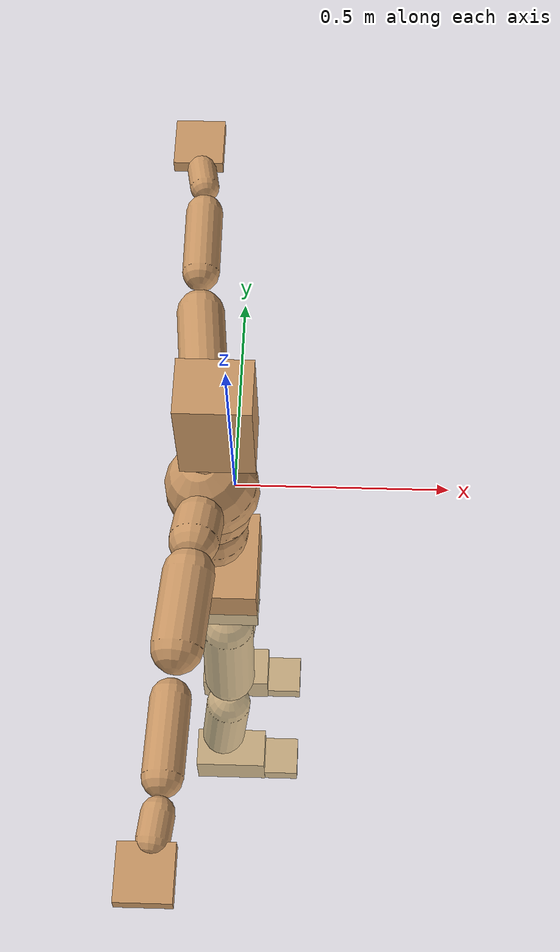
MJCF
<mujoco model="humanoid">
  <compiler coordinate="local" />
  <default>
    <joint damping="0.0" armature="0.01" stiffness="0.0" limited="true" />
    <geom conaffinity="1" condim="3" contype="7" margin="0.001" rgba="0.8 0.6 .4 1" />
  </default>
  <asset>
    <texture type="skybox" builtin="gradient" rgb1=".4 .5 .6" rgb2="0 0 0" width="100" height="100" />
    <texture builtin="flat" height="1278" mark="cross" markrgb="1 1 1" name="texgeom" random="0.01" rgb1="0.8 0.6 0.4" rgb2="0.8 0.6 0.4" type="cube" width="127" />
    <texture builtin="checker" height="100" name="texplane" rgb1="0 0 0" rgb2="0.8 0.8 0.8" type="2d" width="100" />
    <material name="MatPlane" reflectance="0.5" shininess="1" specular="1" texrepeat="60 60" texture="texplane" />
    <material name="geom" texture="texgeom" texuniform="true" />
  </asset>
  <worldbody>
    <light cutoff="100" diffuse="1 1 1" dir="-0 0 -1.3" directional="true" exponent="1" pos="0 0 1.3" specular=".1 .1 .1" />
    <geom conaffinity="1" condim="3" name="floor" pos="0 0 0" rgba="0.8 0.9 0.8 1" size="100 100 .2" type="plane" material="MatPlane" />
    <body name="Pelvis" pos="-0.0024 -0.2255 0.0248">
      <freejoint name="Pelvis" />
      <geom type="box" pos="-0.0110 -0.0002 -0.0104" size="0.0795 0.1063 0.0732" quat="1.0000 0.0000 0.0000 0.0000" density="1000" />
      <body name="L_Hip" pos="-0.0076 0.0679 -0.0917">
        <joint name="L_Hip_x" type="hinge" pos="0 0 0" axis="1 0 0" stiffness="800" damping="80" armature="0.02" range="-180.0000 180.0000" />
        <joint name="L_Hip_y" type="hinge" pos="0 0 0" axis="0 1 0" stiffness="800" damping="80" armature="0.02" range="-180.0000 180.0000" />
        <joint name="L_Hip_z" type="hinge" pos="0 0 0" axis="0 0 1" stiffness="800" damping="80" armature="0.02" range="-180.0000 180.0000" />
        <geom type="capsule" contype="1" conaffinity="1" density="2040.816327" fromto="-0.0002 0.0080 -0.0794 -0.0008 0.0321 -0.3178" size="0.0618" />
        <body name="L_Knee" pos="-0.001 0.0401 -0.3972">
          <joint name="L_Knee_x" type="hinge" pos="0 0 0" axis="1 0 0" stiffness="800" damping="80" armature="0.02" range="-180.0000 180.0000" />
          <joint name="L_Knee_y" type="hinge" pos="0 0 0" axis="0 1 0" stiffness="800" damping="80" armature="0.02" range="-180.0000 180.0000" />
          <joint name="L_Knee_z" type="hinge" pos="0 0 0" axis="0 0 1" stiffness="800" damping="80" armature="0.02" range="-180.0000 180.0000" />
          <geom type="capsule" contype="1" conaffinity="1" density="1234.567901" fromto="-0.0088 -0.0029 -0.0841 -0.0350 -0.0117 -0.3364" size="0.0548" />
          <body name="L_Ankle" pos="-0.0438 -0.0146 -0.4204">
            <joint name="L_Ankle_x" type="hinge" pos="0 0 0" axis="1 0 0" stiffness="800" damping="80" armature="0.02" range="-180.0000 180.0000" />
            <joint name="L_Ankle_y" type="hinge" pos="0 0 0" axis="0 1 0" stiffness="800" damping="80" armature="0.02" range="-180.0000 180.0000" />
            <joint name="L_Ankle_z" type="hinge" pos="0 0 0" axis="0 0 1" stiffness="800" damping="80" armature="0.02" range="-180.0000 180.0000" />
            <geom type="box" pos="0.0253 0.0260 -0.0248" size="0.0875 0.0507 0.0478" quat="1.0000 0.0000 0.0000 0.0000" density="1000" />
            <body name="L_Toe" pos="0.1235 0.0299 -0.0582">
              <joint name="L_Toe_x" type="hinge" pos="0 0 0" axis="1 0 0" stiffness="500" damping="50" armature="0.02" range="-180.0000 180.0000" />
              <joint name="L_Toe_y" type="hinge" pos="0 0 0" axis="0 1 0" stiffness="500" damping="50" armature="0.02" range="-180.0000 180.0000" />
              <joint name="L_Toe_z" type="hinge" pos="0 0 0" axis="0 0 1" stiffness="500" damping="50" armature="0.02" range="-180.0000 180.0000" />
              <geom type="box" pos="0.0255 -0.0039 0.0063" size="0.0506 0.049 0.0208" quat="1.0000 0.0000 0.0000 0.0000" density="1000" />
            </body>
          </body>
        </body>
      </body>
      <body name="R_Hip" pos="-0.0061 -0.0662 -0.0905">
        <joint name="R_Hip_x" type="hinge" pos="0 0 0" axis="1 0 0" stiffness="800" damping="80" armature="0.02" range="-180.0000 180.0000" />
        <joint name="R_Hip_y" type="hinge" pos="0 0 0" axis="0 1 0" stiffness="800" damping="80" armature="0.02" range="-180.0000 180.0000" />
        <joint name="R_Hip_z" type="hinge" pos="0 0 0" axis="0 0 1" stiffness="800" damping="80" armature="0.02" range="-180.0000 180.0000" />
        <geom type="capsule" contype="1" conaffinity="1" density="2040.816327" fromto="-0.0014 -0.0087 -0.0809 -0.0054 -0.0347 -0.3234" size="0.0606" />
        <body name="R_Knee" pos="-0.0068 -0.0433 -0.4043">
          <joint name="R_Knee_x" type="hinge" pos="0 0 0" axis="1 0 0" stiffness="800" damping="80" armature="0.02" range="-180.0000 180.0000" />
          <joint name="R_Knee_y" type="hinge" pos="0 0 0" axis="0 1 0" stiffness="800" damping="80" armature="0.02" range="-180.0000 180.0000" />
          <joint name="R_Knee_z" type="hinge" pos="0 0 0" axis="0 0 1" stiffness="800" damping="80" armature="0.02" range="-180.0000 180.0000" />
          <geom type="capsule" contype="1" conaffinity="1" density="1234.567901" fromto="-0.0085 0.0034 -0.0841 -0.0338 0.0135 -0.3365" size="0.0548" />
          <body name="R_Ankle" pos="-0.0423 0.0169 -0.4207">
            <joint name="R_Ankle_x" type="hinge" pos="0 0 0" axis="1 0 0" stiffness="800" damping="80" armature="0.02" range="-180.0000 180.0000" />
            <joint name="R_Ankle_y" type="hinge" pos="0 0 0" axis="0 1 0" stiffness="800" damping="80" armature="0.02" range="-180.0000 180.0000" />
            <joint name="R_Ankle_z" type="hinge" pos="0 0 0" axis="0 0 1" stiffness="800" damping="80" armature="0.02" range="-180.0000 180.0000" />
            <geom type="box" pos="0.0270 -0.0235 -0.0183" size="0.0896 0.0494 0.0494" quat="1.0000 0.0000 0.0000 0.0000" density="1000" />
            <body name="R_Toe" pos="0.1279 -0.0277 -0.051">
              <joint name="R_Toe_x" type="hinge" pos="0 0 0" axis="1 0 0" stiffness="500" damping="50" armature="0.02" range="-180.0000 180.0000" />
              <joint name="R_Toe_y" type="hinge" pos="0 0 0" axis="0 1 0" stiffness="500" damping="50" armature="0.02" range="-180.0000 180.0000" />
              <joint name="R_Toe_z" type="hinge" pos="0 0 0" axis="0 0 1" stiffness="500" damping="50" armature="0.02" range="-180.0000 180.0000" />
              <geom type="box" pos="0.0241 0.0041 0.0052" size="0.0511 0.0487 0.022" quat="1.0000 0.0000 0.0000 0.0000" density="1000" />
            </body>
          </body>
        </body>
      </body>
      <body name="Torso" pos="-0.0268 -0.0027 0.111">
        <joint name="Torso_x" type="hinge" pos="0 0 0" axis="1 0 0" stiffness="1000" damping="100" armature="0.02" range="-180.0000 180.0000" />
        <joint name="Torso_y" type="hinge" pos="0 0 0" axis="0 1 0" stiffness="1000" damping="100" armature="0.02" range="-180.0000 180.0000" />
        <joint name="Torso_z" type="hinge" pos="0 0 0" axis="0 0 1" stiffness="1000" damping="100" armature="0.02" range="-180.0000 180.0000" />
        <geom type="capsule" contype="1" conaffinity="1" density="2040.816327" fromto="0.0017 0.0029 0.0631 0.0021 0.0036 0.0772" size="0.0758" />
        <body name="Spine" pos="0.0038 0.0065 0.1403">
          <joint name="Spine_x" type="hinge" pos="0 0 0" axis="1 0 0" stiffness="1000" damping="100" armature="0.02" range="-180.0000 180.0000" />
          <joint name="Spine_y" type="hinge" pos="0 0 0" axis="0 1 0" stiffness="1000" damping="100" armature="0.02" range="-180.0000 180.0000" />
          <joint name="Spine_z" type="hinge" pos="0 0 0" axis="0 0 1" stiffness="1000" damping="100" armature="0.02" range="-180.0000 180.0000" />
          <geom type="capsule" contype="1" conaffinity="1" density="2040.816327" fromto="0.0099 0.0005 0.0246 0.0122 0.0006 0.0301" size="0.074" />
          <body name="Chest" pos="0.0221 0.0011 0.0547">
            <joint name="Chest_x" type="hinge" pos="0 0 0" axis="1 0 0" stiffness="1000" damping="100" armature="0.02" range="-180.0000 180.0000" />
            <joint name="Chest_y" type="hinge" pos="0 0 0" axis="0 1 0" stiffness="1000" damping="100" armature="0.02" range="-180.0000 180.0000" />
            <joint name="Chest_z" type="hinge" pos="0 0 0" axis="0 0 1" stiffness="1000" damping="100" armature="0.02" range="-180.0000 180.0000" />
            <geom type="capsule" contype="1" conaffinity="1" density="2040.816327" fromto="-0.0147 -0.0011 0.0689 -0.0180 -0.0014 0.0843" size="0.0993" />
            <body name="Neck" pos="-0.0339 -0.0038 0.2172">
              <joint name="Neck_x" type="hinge" pos="0 0 0" axis="1 0 0" stiffness="500" damping="50" armature="0.02" range="-180.0000 180.0000" />
              <joint name="Neck_y" type="hinge" pos="0 0 0" axis="0 1 0" stiffness="500" damping="50" armature="0.02" range="-180.0000 180.0000" />
              <joint name="Neck_z" type="hinge" pos="0 0 0" axis="0 0 1" stiffness="500" damping="50" armature="0.02" range="-180.0000 180.0000" />
              <geom type="capsule" contype="1" conaffinity="1" density="1000" fromto="0.0105 0.0013 0.0138 0.0421 0.0053 0.0553" size="0.0444" />
              <body name="Head" pos="0.0527 0.0066 0.0691">
                <joint name="Head_x" type="hinge" pos="0 0 0" axis="1 0 0" stiffness="500" damping="50" armature="0.02" range="-180.0000 180.0000" />
                <joint name="Head_y" type="hinge" pos="0 0 0" axis="0 1 0" stiffness="500" damping="50" armature="0.02" range="-180.0000 180.0000" />
                <joint name="Head_z" type="hinge" pos="0 0 0" axis="0 0 1" stiffness="500" damping="50" armature="0.02" range="-180.0000 180.0000" />
                <geom type="box" pos="-0.0115 -0.0041 0.0883" size="0.0767 0.0611 0.116" quat="1.0000 0.0000 0.0000 0.0000" density="1000" />

              </body>
            </body>
            <body name="L_Thorax" pos="-0.0299 0.0799 0.1229">
              <joint name="L_Thorax_x" type="hinge" pos="0 0 0" axis="1 0 0" stiffness="500" damping="50" armature="0.02" range="-180.0000 180.0000" />
              <joint name="L_Thorax_y" type="hinge" pos="0 0 0" axis="0 1 0" stiffness="500" damping="50" armature="0.02" range="-180.0000 180.0000" />
              <joint name="L_Thorax_z" type="hinge" pos="0 0 0" axis="0 0 1" stiffness="500" damping="50" armature="0.02" range="-180.0000 180.0000" />
              <geom type="capsule" contype="1" conaffinity="1" density="1000" fromto="-0.0018 0.0187 0.0063 -0.0072 0.0749 0.0254" size="0.0529" />
              <body name="L_Shoulder" pos="-0.009 0.0937 0.0317">
                <joint name="L_Shoulder_x" type="hinge" pos="0 0 0" axis="1 0 0" stiffness="500" damping="50" armature="0.02" range="-720.0000 720.0000" />
                <joint name="L_Shoulder_y" type="hinge" pos="0 0 0" axis="0 1 0" stiffness="500" damping="50" armature="0.02" range="-720.0000 720.0000" />
                <joint name="L_Shoulder_z" type="hinge" pos="0 0 0" axis="0 0 1" stiffness="500" damping="50" armature="0.02" range="-720.0000 720.0000" />
                <geom type="capsule" contype="1" conaffinity="1" density="1000" fromto="-0.0055 0.0542 -0.0033 -0.0220 0.2166 -0.0130" size="0.0522" />
                <body name="L_Elbow" pos="-0.0275 0.2708 -0.0163">
                  <joint name="L_Elbow_x" type="hinge" pos="0 0 0" axis="1 0 0" stiffness="500" damping="50" armature="0.02" range="-720.0000 720.0000" />
                  <joint name="L_Elbow_y" type="hinge" pos="0 0 0" axis="0 1 0" stiffness="500" damping="50" armature="0.02" range="-720.0000 720.0000" />
                  <joint name="L_Elbow_z" type="hinge" pos="0 0 0" axis="0 0 1" stiffness="500" damping="50" armature="0.02" range="-720.0000 720.0000" />
                  <geom type="capsule" contype="1" conaffinity="1" density="1000" fromto="-0.0004 0.0524 0.0020 -0.0016 0.2095 0.0078" size="0.041" />
                  <body name="L_Wrist" pos="-0.002 0.2619 0.0098">
                    <joint name="L_Wrist_x" type="hinge" pos="0 0 0" axis="1 0 0" stiffness="300" damping="30" armature="0.02" range="-180.0000 180.0000" />
                    <joint name="L_Wrist_y" type="hinge" pos="0 0 0" axis="0 1 0" stiffness="300" damping="30" armature="0.02" range="-180.0000 180.0000" />
                    <joint name="L_Wrist_z" type="hinge" pos="0 0 0" axis="0 0 1" stiffness="300" damping="30" armature="0.02" range="-180.0000 180.0000" />
                    <geom type="capsule" contype="1" conaffinity="1" density="1000" fromto="-0.0032 0.0174 -0.0015 -0.0128 0.0696 -0.0061" size="0.0327" />
                    <body name="L_Hand" pos="-0.016 0.087 -0.0076">
                      <joint name="L_Hand_x" type="hinge" pos="0 0 0" axis="1 0 0" stiffness="300" damping="30" armature="0.02" range="-180.0000 180.0000" />
                      <joint name="L_Hand_y" type="hinge" pos="0 0 0" axis="0 1 0" stiffness="300" damping="30" armature="0.02" range="-180.0000 180.0000" />
                      <joint name="L_Hand_z" type="hinge" pos="0 0 0" axis="0 0 1" stiffness="300" damping="30" armature="0.02" range="-180.0000 180.0000" />
                      <geom type="box" pos="-0.0054 0.0507 0.0011" size="0.0554 0.06 0.0162" quat="1.0000 0.0000 0.0000 0.0000" density="1000" />
                    </body>
                  </body>
                </body>
              </body>
            </body>
            <body name="R_Thorax" pos="-0.0345 -0.0836 0.1194">
              <joint name="R_Thorax_x" type="hinge" pos="0 0 0" axis="1 0 0" stiffness="500" damping="50" armature="0.02" range="-180.0000 180.0000" />
              <joint name="R_Thorax_y" type="hinge" pos="0 0 0" axis="0 1 0" stiffness="500" damping="50" armature="0.02" range="-180.0000 180.0000" />
              <joint name="R_Thorax_z" type="hinge" pos="0 0 0" axis="0 0 1" stiffness="500" damping="50" armature="0.02" range="-180.0000 180.0000" />
              <geom type="capsule" contype="1" conaffinity="1" density="1000" fromto="-0.0016 -0.0198 0.0069 -0.0064 -0.0793 0.0277" size="0.0519" />
              <body name="R_Shoulder" pos="-0.008 -0.0991 0.0346">
                <joint name="R_Shoulder_x" type="hinge" pos="0 0 0" axis="1 0 0" stiffness="500" damping="50" armature="0.02" range="-720.0000 720.0000" />
                <joint name="R_Shoulder_y" type="hinge" pos="0 0 0" axis="0 1 0" stiffness="500" damping="50" armature="0.02" range="-720.0000 720.0000" />
                <joint name="R_Shoulder_z" type="hinge" pos="0 0 0" axis="0 0 1" stiffness="500" damping="50" armature="0.02" range="-720.0000 720.0000" />
                <geom type="capsule" contype="1" conaffinity="1" density="1000" fromto="-0.0044 -0.0528 -0.0033 -0.0177 -0.2110 -0.0130" size="0.0536" />
                <body name="R_Elbow" pos="-0.0221 -0.2638 -0.0163">
                  <joint name="R_Elbow_x" type="hinge" pos="0 0 0" axis="1 0 0" stiffness="500" damping="50" armature="0.02" range="-720.0000 720.0000" />
                  <joint name="R_Elbow_y" type="hinge" pos="0 0 0" axis="0 1 0" stiffness="500" damping="50" armature="0.02" range="-720.0000 720.0000" />
                  <joint name="R_Elbow_z" type="hinge" pos="0 0 0" axis="0 0 1" stiffness="500" damping="50" armature="0.02" range="-720.0000 720.0000" />
                  <geom type="capsule" contype="1" conaffinity="1" density="1000" fromto="-0.0014 -0.0534 0.0015 -0.0055 -0.2137 0.0060" size="0.0413" />
                  <body name="R_Wrist" pos="-0.0069 -0.2671 0.0075">
                    <joint name="R_Wrist_x" type="hinge" pos="0 0 0" axis="1 0 0" stiffness="300" damping="30" armature="0.02" range="-180.0000 180.0000" />
                    <joint name="R_Wrist_y" type="hinge" pos="0 0 0" axis="0 1 0" stiffness="300" damping="30" armature="0.02" range="-180.0000 180.0000" />
                    <joint name="R_Wrist_z" type="hinge" pos="0 0 0" axis="0 0 1" stiffness="300" damping="30" armature="0.02" range="-180.0000 180.0000" />
                    <geom type="capsule" contype="1" conaffinity="1" density="1000" fromto="-0.0021 -0.0174 -0.0011 -0.0082 -0.0696 -0.0045" size="0.0333" />
                    <body name="R_Hand" pos="-0.0103 -0.087 -0.0056">
                      <joint name="R_Hand_x" type="hinge" pos="0 0 0" axis="1 0 0" stiffness="300" damping="30" armature="0.02" range="-180.0000 180.0000" />
                      <joint name="R_Hand_y" type="hinge" pos="0 0 0" axis="0 1 0" stiffness="300" damping="30" armature="0.02" range="-180.0000 180.0000" />
                      <joint name="R_Hand_z" type="hinge" pos="0 0 0" axis="0 0 1" stiffness="300" damping="30" armature="0.02" range="-180.0000 180.0000" />
                      <geom type="box" pos="-0.0079 -0.0472 -0.0009" size="0.0559 0.0581 0.0167" quat="1.0000 0.0000 0.0000 0.0000" density="1000" />
                    </body>
                  </body>
                </body>
              </body>
            </body>
          </body>
        </body>
      </body>
    </body>
  </worldbody>
  <actuator>
    <motor name="L_Hip_x" joint="L_Hip_x" gear="500" />
    <motor name="L_Hip_y" joint="L_Hip_y" gear="500" />
    <motor name="L_Hip_z" joint="L_Hip_z" gear="500" />
    <motor name="L_Knee_x" joint="L_Knee_x" gear="500" />
    <motor name="L_Knee_y" joint="L_Knee_y" gear="500" />
    <motor name="L_Knee_z" joint="L_Knee_z" gear="500" />
    <motor name="L_Ankle_x" joint="L_Ankle_x" gear="500" />
    <motor name="L_Ankle_y" joint="L_Ankle_y" gear="500" />
    <motor name="L_Ankle_z" joint="L_Ankle_z" gear="500" />
    <motor name="L_Toe_x" joint="L_Toe_x" gear="500" />
    <motor name="L_Toe_y" joint="L_Toe_y" gear="500" />
    <motor name="L_Toe_z" joint="L_Toe_z" gear="500" />
    <motor name="R_Hip_x" joint="R_Hip_x" gear="500" />
    <motor name="R_Hip_y" joint="R_Hip_y" gear="500" />
    <motor name="R_Hip_z" joint="R_Hip_z" gear="500" />
    <motor name="R_Knee_x" joint="R_Knee_x" gear="500" />
    <motor name="R_Knee_y" joint="R_Knee_y" gear="500" />
    <motor name="R_Knee_z" joint="R_Knee_z" gear="500" />
    <motor name="R_Ankle_x" joint="R_Ankle_x" gear="500" />
    <motor name="R_Ankle_y" joint="R_Ankle_y" gear="500" />
    <motor name="R_Ankle_z" joint="R_Ankle_z" gear="500" />
    <motor name="R_Toe_x" joint="R_Toe_x" gear="500" />
    <motor name="R_Toe_y" joint="R_Toe_y" gear="500" />
    <motor name="R_Toe_z" joint="R_Toe_z" gear="500" />
    <motor name="Torso_x" joint="Torso_x" gear="500" />
    <motor name="Torso_y" joint="Torso_y" gear="500" />
    <motor name="Torso_z" joint="Torso_z" gear="500" />
    <motor name="Spine_x" joint="Spine_x" gear="500" />
    <motor name="Spine_y" joint="Spine_y" gear="500" />
    <motor name="Spine_z" joint="Spine_z" gear="500" />
    <motor name="Chest_x" joint="Chest_x" gear="500" />
    <motor name="Chest_y" joint="Chest_y" gear="500" />
    <motor name="Chest_z" joint="Chest_z" gear="500" />
    <motor name="Neck_x" joint="Neck_x" gear="500" />
    <motor name="Neck_y" joint="Neck_y" gear="500" />
    <motor name="Neck_z" joint="Neck_z" gear="500" />
    <motor name="Head_x" joint="Head_x" gear="500" />
    <motor name="Head_y" joint="Head_y" gear="500" />
    <motor name="Head_z" joint="Head_z" gear="500" />
    <motor name="L_Thorax_x" joint="L_Thorax_x" gear="500" />
    <motor name="L_Thorax_y" joint="L_Thorax_y" gear="500" />
    <motor name="L_Thorax_z" joint="L_Thorax_z" gear="500" />
    <motor name="L_Shoulder_x" joint="L_Shoulder_x" gear="500" />
    <motor name="L_Shoulder_y" joint="L_Shoulder_y" gear="500" />
    <motor name="L_Shoulder_z" joint="L_Shoulder_z" gear="500" />
    <motor name="L_Elbow_x" joint="L_Elbow_x" gear="500" />
    <motor name="L_Elbow_y" joint="L_Elbow_y" gear="500" />
    <motor name="L_Elbow_z" joint="L_Elbow_z" gear="500" />
    <motor name="L_Wrist_x" joint="L_Wrist_x" gear="500" />
    <motor name="L_Wrist_y" joint="L_Wrist_y" gear="500" />
    <motor name="L_Wrist_z" joint="L_Wrist_z" gear="500" />
    <motor name="L_Hand_x" joint="L_Hand_x" gear="500" />
    <motor name="L_Hand_y" joint="L_Hand_y" gear="500" />
    <motor name="L_Hand_z" joint="L_Hand_z" gear="500" />
    <motor name="R_Thorax_x" joint="R_Thorax_x" gear="500" />
    <motor name="R_Thorax_y" joint="R_Thorax_y" gear="500" />
    <motor name="R_Thorax_z" joint="R_Thorax_z" gear="500" />
    <motor name="R_Shoulder_x" joint="R_Shoulder_x" gear="500" />
    <motor name="R_Shoulder_y" joint="R_Shoulder_y" gear="500" />
    <motor name="R_Shoulder_z" joint="R_Shoulder_z" gear="500" />
    <motor name="R_Elbow_x" joint="R_Elbow_x" gear="500" />
    <motor name="R_Elbow_y" joint="R_Elbow_y" gear="500" />
    <motor name="R_Elbow_z" joint="R_Elbow_z" gear="500" />
    <motor name="R_Wrist_x" joint="R_Wrist_x" gear="500" />
    <motor name="R_Wrist_y" joint="R_Wrist_y" gear="500" />
    <motor name="R_Wrist_z" joint="R_Wrist_z" gear="500" />
    <motor name="R_Hand_x" joint="R_Hand_x" gear="500" />
    <motor name="R_Hand_y" joint="R_Hand_y" gear="500" />
    <motor name="R_Hand_z" joint="R_Hand_z" gear="500" />
  </actuator>
  <contact>
    <exclude body1="Torso" body2="Chest" />
    <exclude body1="Head" body2="Chest" />
    <exclude body1="R_Knee" body2="R_Toe" />
    <exclude body1="R_Knee" body2="L_Ankle" />
    <exclude body1="R_Knee" body2="L_Toe" />
    <exclude body1="L_Knee" body2="L_Toe" />
    <exclude body1="L_Knee" body2="R_Ankle" />
    <exclude body1="L_Knee" body2="R_Toe" />
    <exclude body1="L_Shoulder" body2="Chest" />
    <exclude body1="R_Shoulder" body2="Chest" />
  </contact>
  <sensor />
  <size njmax="700" nconmax="700" />
</mujoco>
